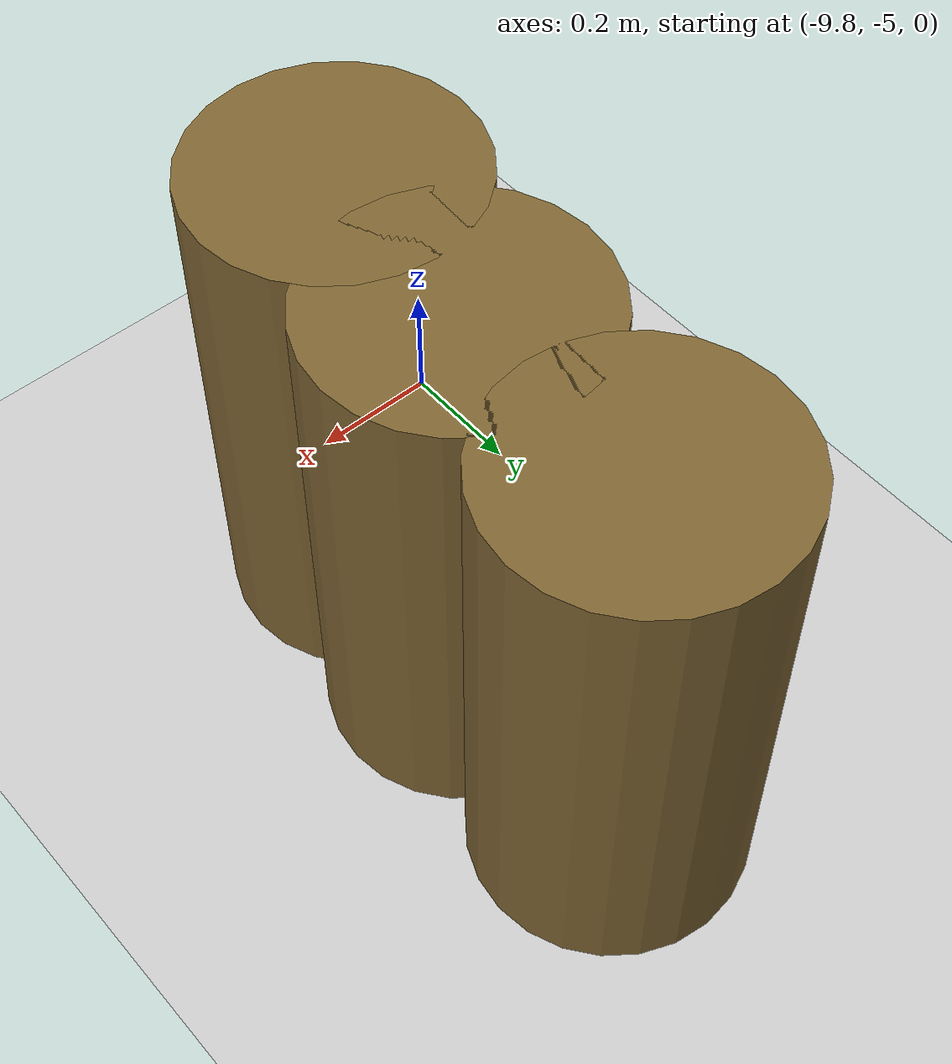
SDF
<sdf version="1.6">
 <world name="default">
  <model name="ground_plane">
   <static>1</static>
   <link name="link">
    <collision name="collision">
     <geometry><plane><normal>0 0 1</normal><size>100 100</size></plane></geometry>
     <surface><friction><ode><mu>100</mu><mu2>50</mu2></ode></friction></surface>
    </collision>
    <visual name="visual">
     <cast_shadows>0</cast_shadows>
     <geometry><plane><normal>0 0 1</normal><size>100 100</size></plane></geometry>
     <material>
      <script><uri>file://media/materials/scripts/gazebo.material</uri><name>Gazebo/Grey</name></script>
     </material>
    </visual>
   </link>
  </model>
  <model name="mini_cylinder_0_clone_0_clone_clone_clone_clone_3_clone_17">
   <link name="link">
    <inertial>
     <mass>1</mass>
     <inertia><ixx>0.145833</ixx><ixy>0</ixy><ixz>0</ixz><iyy>0.145833</iyy><iyz>0</iyz><izz>0.125</izz></inertia>
    </inertial>
    <visual name="visual">
     <geometry><cylinder><radius>0.2</radius><length>0.8</length></cylinder></geometry>
     <material>
      <script><name>Gazebo/Grey</name><uri>file://media/materials/scripts/gazebo.material</uri></script>
      <shader type="vertex"><normal_map>__default__</normal_map></shader>
      <ambient>0.5 0.4 0.2 1</ambient>
      <diffuse>0.7 0.7 0.7 1</diffuse>
      <specular>0.01 0.01 0.01 1</specular>
      <emissive>0 0 0 1</emissive>
     </material>
    </visual>
    <collision name="collision">
     <geometry><cylinder><radius>0.2</radius><length>0.8</length></cylinder></geometry>
     <surface>
      <friction>
       <ode><mu>1</mu><mu2>1</mu2><fdir1>0 0 0</fdir1><slip1>0</slip1><slip2>0</slip2></ode>
       <torsional>
        <coefficient>1</coefficient>
        <patch_radius>0</patch_radius>
        <surface_radius>0</surface_radius>
        <use_patch_radius>1</use_patch_radius>
        <ode><slip>0</slip></ode>
       </torsional>
      </friction>
      <bounce><restitution_coefficient>0</restitution_coefficient><threshold>1e+06</threshold></bounce>
      <contact>
       <collide_without_contact>0</collide_without_contact>
       <collide_without_contact_bitmask>1</collide_without_contact_bitmask>
       <collide_bitmask>1</collide_bitmask>
       <ode>
        <soft_cfm>0</soft_cfm>
        <soft_erp>0.2</soft_erp>
        <kp>1e+13</kp>
        <kd>1</kd>
        <max_vel>0.01</max_vel>
        <min_depth>0</min_depth>
       </ode>
       <bullet>
        <split_impulse>1</split_impulse>
        <split_impulse_penetration_threshold>-0.01</split_impulse_penetration_threshold>
        <soft_cfm>0</soft_cfm>
        <soft_erp>0.2</soft_erp>
        <kp>1e+13</kp>
        <kd>1</kd>
       </bullet>
      </contact>
     </surface>
    </collision>
   </link>
   <static>1</static>
   <pose>-9.47945 -4.1983 0.4 0 -0 0</pose>
  </model>
  <model name="mini_cylinder_0_clone_0_clone_clone_clone_clone_3_clone_18">
   <link name="link">
    <inertial>
     <mass>1</mass>
     <inertia><ixx>0.145833</ixx><ixy>0</ixy><ixz>0</ixz><iyy>0.145833</iyy><iyz>0</iyz><izz>0.125</izz></inertia>
    </inertial>
    <visual name="visual">
     <geometry><cylinder><radius>0.2</radius><length>0.8</length></cylinder></geometry>
     <material>
      <script><name>Gazebo/Grey</name><uri>file://media/materials/scripts/gazebo.material</uri></script>
      <shader type="vertex"><normal_map>__default__</normal_map></shader>
      <ambient>0.5 0.4 0.2 1</ambient>
      <diffuse>0.7 0.7 0.7 1</diffuse>
      <specular>0.01 0.01 0.01 1</specular>
      <emissive>0 0 0 1</emissive>
     </material>
    </visual>
    <collision name="collision">
     <geometry><cylinder><radius>0.2</radius><length>0.8</length></cylinder></geometry>
     <surface>
      <friction>
       <ode><mu>1</mu><mu2>1</mu2><fdir1>0 0 0</fdir1><slip1>0</slip1><slip2>0</slip2></ode>
       <torsional>
        <coefficient>1</coefficient>
        <patch_radius>0</patch_radius>
        <surface_radius>0</surface_radius>
        <use_patch_radius>1</use_patch_radius>
        <ode><slip>0</slip></ode>
       </torsional>
      </friction>
      <bounce><restitution_coefficient>0</restitution_coefficient><threshold>1e+06</threshold></bounce>
      <contact>
       <collide_without_contact>0</collide_without_contact>
       <collide_without_contact_bitmask>1</collide_without_contact_bitmask>
       <collide_bitmask>1</collide_bitmask>
       <ode>
        <soft_cfm>0</soft_cfm>
        <soft_erp>0.2</soft_erp>
        <kp>1e+13</kp>
        <kd>1</kd>
        <max_vel>0.01</max_vel>
        <min_depth>0</min_depth>
       </ode>
       <bullet>
        <split_impulse>1</split_impulse>
        <split_impulse_penetration_threshold>-0.01</split_impulse_penetration_threshold>
        <soft_cfm>0</soft_cfm>
        <soft_erp>0.2</soft_erp>
        <kp>1e+13</kp>
        <kd>1</kd>
       </bullet>
      </contact>
     </surface>
    </collision>
   </link>
   <static>1</static>
   <pose>-9.47945 -4.512 0.4 0 -0 0</pose>
  </model>
  <model name="mini_cylinder_0_clone_0_clone_clone_clone_clone_3_clone_20_clone_105">
   <link name="link">
    <inertial>
     <mass>1</mass>
     <inertia><ixx>0.145833</ixx><ixy>0</ixy><ixz>0</ixz><iyy>0.145833</iyy><iyz>0</iyz><izz>0.125</izz></inertia>
    </inertial>
    <visual name="visual">
     <geometry><cylinder><radius>0.2</radius><length>0.8</length></cylinder></geometry>
     <material>
      <script><name>Gazebo/Grey</name><uri>file://media/materials/scripts/gazebo.material</uri></script>
      <shader type="vertex"><normal_map>__default__</normal_map></shader>
      <ambient>0.5 0.4 0.2 1</ambient>
      <diffuse>0.7 0.7 0.7 1</diffuse>
      <specular>0.01 0.01 0.01 1</specular>
      <emissive>0 0 0 1</emissive>
     </material>
    </visual>
    <collision name="collision">
     <geometry><cylinder><radius>0.2</radius><length>0.8</length></cylinder></geometry>
     <surface>
      <friction>
       <ode><mu>1</mu><mu2>1</mu2><fdir1>0 0 0</fdir1><slip1>0</slip1><slip2>0</slip2></ode>
       <torsional>
        <coefficient>1</coefficient>
        <patch_radius>0</patch_radius>
        <surface_radius>0</surface_radius>
        <use_patch_radius>1</use_patch_radius>
        <ode><slip>0</slip></ode>
       </torsional>
      </friction>
      <bounce><restitution_coefficient>0</restitution_coefficient><threshold>1e+06</threshold></bounce>
      <contact>
       <collide_without_contact>0</collide_without_contact>
       <collide_without_contact_bitmask>1</collide_without_contact_bitmask>
       <collide_bitmask>1</collide_bitmask>
       <ode>
        <soft_cfm>0</soft_cfm>
        <soft_erp>0.2</soft_erp>
        <kp>1e+13</kp>
        <kd>1</kd>
        <max_vel>0.01</max_vel>
        <min_depth>0</min_depth>
       </ode>
       <bullet>
        <split_impulse>1</split_impulse>
        <split_impulse_penetration_threshold>-0.01</split_impulse_penetration_threshold>
        <soft_cfm>0</soft_cfm>
        <soft_erp>0.2</soft_erp>
        <kp>1e+13</kp>
        <kd>1</kd>
       </bullet>
      </contact>
     </surface>
    </collision>
   </link>
   <static>1</static>
   <pose>-9.51001 -4.78474 0.4 0 -0 0</pose>
  </model>
 </world>
</sdf>
